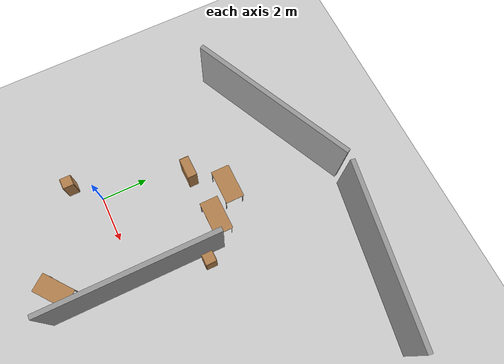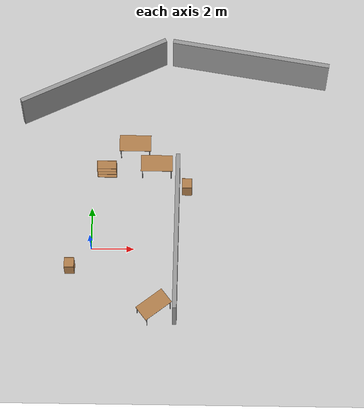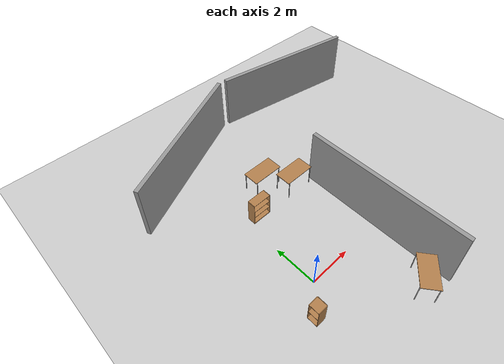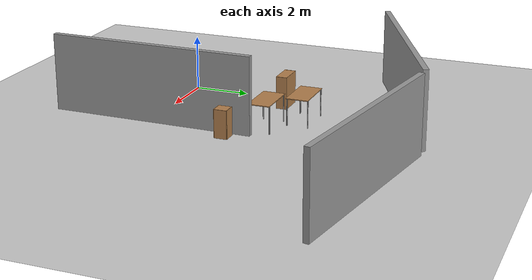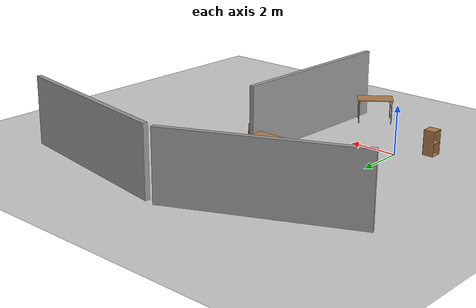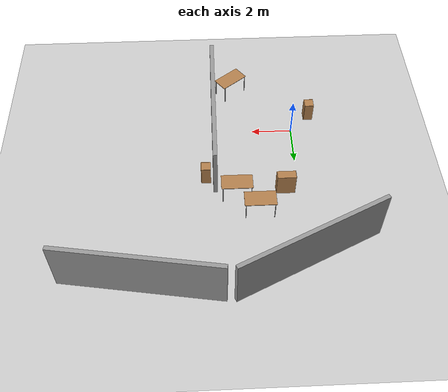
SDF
<sdf version="1.4">
 <world name="default">
  <model name="ground_plane">
   <static>1</static>
   <link name="link">
    <collision name="collision">
     <geometry><plane><normal>0 0 1</normal><size>100 100</size></plane></geometry>
     <surface><friction><ode><mu>100</mu><mu2>50</mu2></ode></friction></surface>
    </collision>
    <visual name="visual">
     <cast_shadows>0</cast_shadows>
     <geometry><plane><normal>0 0 1</normal><size>100 100</size></plane></geometry>
     <material>
      <script><uri>file://media/materials/scripts/gazebo.material</uri><name>Gazebo/Grey</name></script>
     </material>
    </visual>
    <velocity_decay><linear>0</linear><angular>0</angular></velocity_decay>
   </link>
  </model>
  <light name="sun" type="directional">
   <pose>0 0 10 0 -0 0</pose>
   <diffuse>0.8 0.8 0.8 1</diffuse>
   <specular>0.2 0.2 0.2 1</specular>
   <attenuation>
    <range>1000</range>
    <constant>0.9</constant>
    <linear>0.01</linear>
    <quadratic>0.001</quadratic>
   </attenuation>
   <direction>-0.5 0.1 -0.9</direction>
  </light>
  <physics type="ode">
   <max_step_size>0.001</max_step_size>
   <real_time_factor>1</real_time_factor>
   <real_time_update_rate>1000</real_time_update_rate>
   <gravity>0 0 -9.8</gravity>
  </physics>
  <scene><ambient>0.4 0.4 0.4 1</ambient><background>0.7 0.7 0.7 1</background><shadows>1</shadows></scene>
  <model name="grey_wall_0">
   <static>1</static>
   <link name="link">
    <pose>0 0 1.4 0 -0 0</pose>
    <collision name="collision"><geometry><box><size>7.5 0.2 2.8</size></box></geometry></collision>
    <visual name="visual">
     <cast_shadows>0</cast_shadows>
     <geometry><box><size>7.5 0.2 2.8</size></box></geometry>
     <material>
      <script>
       <uri>model://grey_wall/materials/scripts</uri>
       <uri>model://grey_wall/materials/textures</uri>
       <name>vrc/grey_wall</name>
      </script>
     </material>
    </visual>
    <velocity_decay><linear>0</linear><angular>0</angular></velocity_decay>
   </link>
   <pose>4.00423 0.07816 0 0 -0 1.56</pose>
  </model>
  <model name="table">
   <static>1</static>
   <link name="link">
    <collision name="surface">
     <pose>0 0 1 0 -0 0</pose>
     <geometry><box><size>1.5 0.8 0.03</size></box></geometry>
     <surface><friction><ode><mu>0.6</mu><mu2>0.6</mu2></ode></friction></surface>
    </collision>
    <visual name="visual1">
     <pose>0 0 1 0 -0 0</pose>
     <geometry><box><size>1.5 0.8 0.03</size></box></geometry>
     <material>
      <script><uri>file://media/materials/scripts/gazebo.material</uri><name>Gazebo/Wood</name></script>
     </material>
    </visual>
    <collision name="front_left_leg">
     <pose>0.68 0.38 0.5 0 -0 0</pose>
     <geometry><cylinder><radius>0.02</radius><length>1</length></cylinder></geometry>
    </collision>
    <visual name="front_left_leg">
     <pose>0.68 0.38 0.5 0 -0 0</pose>
     <geometry><cylinder><radius>0.02</radius><length>1</length></cylinder></geometry>
     <material>
      <script><uri>file://media/materials/scripts/gazebo.material</uri><name>Gazebo/Grey</name></script>
     </material>
    </visual>
    <collision name="front_right_leg">
     <pose>0.68 -0.38 0.5 0 -0 0</pose>
     <geometry><cylinder><radius>0.02</radius><length>1</length></cylinder></geometry>
    </collision>
    <visual name="front_right_leg">
     <pose>0.68 -0.38 0.5 0 -0 0</pose>
     <geometry><cylinder><radius>0.02</radius><length>1</length></cylinder></geometry>
     <material>
      <script><uri>file://media/materials/scripts/gazebo.material</uri><name>Gazebo/Grey</name></script>
     </material>
    </visual>
    <collision name="back_right_leg">
     <pose>-0.68 -0.38 0.5 0 -0 0</pose>
     <geometry><cylinder><radius>0.02</radius><length>1</length></cylinder></geometry>
    </collision>
    <visual name="back_right_leg">
     <pose>-0.68 -0.38 0.5 0 -0 0</pose>
     <geometry><cylinder><radius>0.02</radius><length>1</length></cylinder></geometry>
     <material>
      <script><uri>file://media/materials/scripts/gazebo.material</uri><name>Gazebo/Grey</name></script>
     </material>
    </visual>
    <collision name="back_left_leg">
     <pose>-0.68 0.38 0.5 0 -0 0</pose>
     <geometry><cylinder><radius>0.02</radius><length>1</length></cylinder></geometry>
    </collision>
    <visual name="back_left_leg">
     <pose>-0.68 0.38 0.5 0 -0 0</pose>
     <geometry><cylinder><radius>0.02</radius><length>1</length></cylinder></geometry>
     <material>
      <script><uri>file://media/materials/scripts/gazebo.material</uri><name>Gazebo/Grey</name></script>
     </material>
    </visual>
    <velocity_decay><linear>0</linear><angular>0</angular></velocity_decay>
   </link>
   <pose>3.03234 3.99644 0 0 -0 0</pose>
  </model>
  <model name="table_0">
   <static>1</static>
   <link name="link">
    <collision name="surface">
     <pose>0 0 1 0 -0 0</pose>
     <geometry><box><size>1.5 0.8 0.03</size></box></geometry>
     <surface><friction><ode><mu>0.6</mu><mu2>0.6</mu2></ode></friction></surface>
    </collision>
    <visual name="visual1">
     <pose>0 0 1 0 -0 0</pose>
     <geometry><box><size>1.5 0.8 0.03</size></box></geometry>
     <material>
      <script><uri>file://media/materials/scripts/gazebo.material</uri><name>Gazebo/Wood</name></script>
     </material>
    </visual>
    <collision name="front_left_leg">
     <pose>0.68 0.38 0.5 0 -0 0</pose>
     <geometry><cylinder><radius>0.02</radius><length>1</length></cylinder></geometry>
    </collision>
    <visual name="front_left_leg">
     <pose>0.68 0.38 0.5 0 -0 0</pose>
     <geometry><cylinder><radius>0.02</radius><length>1</length></cylinder></geometry>
     <material>
      <script><uri>file://media/materials/scripts/gazebo.material</uri><name>Gazebo/Grey</name></script>
     </material>
    </visual>
    <collision name="front_right_leg">
     <pose>0.68 -0.38 0.5 0 -0 0</pose>
     <geometry><cylinder><radius>0.02</radius><length>1</length></cylinder></geometry>
    </collision>
    <visual name="front_right_leg">
     <pose>0.68 -0.38 0.5 0 -0 0</pose>
     <geometry><cylinder><radius>0.02</radius><length>1</length></cylinder></geometry>
     <material>
      <script><uri>file://media/materials/scripts/gazebo.material</uri><name>Gazebo/Grey</name></script>
     </material>
    </visual>
    <collision name="back_right_leg">
     <pose>-0.68 -0.38 0.5 0 -0 0</pose>
     <geometry><cylinder><radius>0.02</radius><length>1</length></cylinder></geometry>
    </collision>
    <visual name="back_right_leg">
     <pose>-0.68 -0.38 0.5 0 -0 0</pose>
     <geometry><cylinder><radius>0.02</radius><length>1</length></cylinder></geometry>
     <material>
      <script><uri>file://media/materials/scripts/gazebo.material</uri><name>Gazebo/Grey</name></script>
     </material>
    </visual>
    <collision name="back_left_leg">
     <pose>-0.68 0.38 0.5 0 -0 0</pose>
     <geometry><cylinder><radius>0.02</radius><length>1</length></cylinder></geometry>
    </collision>
    <visual name="back_left_leg">
     <pose>-0.68 0.38 0.5 0 -0 0</pose>
     <geometry><cylinder><radius>0.02</radius><length>1</length></cylinder></geometry>
     <material>
      <script><uri>file://media/materials/scripts/gazebo.material</uri><name>Gazebo/Grey</name></script>
     </material>
    </visual>
    <velocity_decay><linear>0</linear><angular>0</angular></velocity_decay>
   </link>
   <pose>3 -3 0 0 0 -2.48319</pose>
  </model>
  <model name="bookshelf">
   <static>1</static>
   <link name="link">
    <inertial><mass>1</mass></inertial>
    <collision name="back">
     <pose>0 0.005 0.6 0 -0 0</pose>
     <geometry><box><size>0.9 0.01 1.2</size></box></geometry>
    </collision>
    <visual name="visual1">
     <pose>0 0.005 0.6 0 -0 0</pose>
     <geometry><box><size>0.9 0.01 1.2</size></box></geometry>
     <material>
      <script><uri>file://media/materials/scripts/gazebo.material</uri><name>Gazebo/Wood</name></script>
     </material>
    </visual>
    <collision name="left_side">
     <pose>0.45 -0.195 0.6 0 -0 0</pose>
     <geometry><box><size>0.02 0.4 1.2</size></box></geometry>
    </collision>
    <visual name="visual2">
     <pose>0.45 -0.195 0.6 0 -0 0</pose>
     <geometry><box><size>0.02 0.4 1.2</size></box></geometry>
     <material>
      <script><uri>file://media/materials/scripts/gazebo.material</uri><name>Gazebo/Wood</name></script>
     </material>
    </visual>
    <collision name="right_side">
     <pose>-0.45 -0.195 0.6 0 -0 0</pose>
     <geometry><box><size>0.02 0.4 1.2</size></box></geometry>
    </collision>
    <visual name="visual3">
     <pose>-0.45 -0.195 0.6 0 -0 0</pose>
     <geometry><box><size>0.02 0.4 1.2</size></box></geometry>
     <material>
      <script><uri>file://media/materials/scripts/gazebo.material</uri><name>Gazebo/Wood</name></script>
     </material>
    </visual>
    <collision name="bottom">
     <pose>0 -0.195 0.03 0 -0 0</pose>
     <geometry><box><size>0.88 0.4 0.06</size></box></geometry>
    </collision>
    <visual name="visual4">
     <pose>0 -0.195 0.03 0 -0 0</pose>
     <geometry><box><size>0.88 0.4 0.06</size></box></geometry>
     <material>
      <script><uri>file://media/materials/scripts/gazebo.material</uri><name>Gazebo/Wood</name></script>
     </material>
    </visual>
    <collision name="top">
     <pose>0 -0.195 1.19 0 -0 0</pose>
     <geometry><box><size>0.88 0.4 0.02</size></box></geometry>
    </collision>
    <visual name="visual5">
     <pose>0 -0.195 1.19 0 -0 0</pose>
     <geometry><box><size>0.88 0.4 0.02</size></box></geometry>
     <material>
      <script><uri>file://media/materials/scripts/gazebo.material</uri><name>Gazebo/Wood</name></script>
     </material>
    </visual>
    <collision name="low_shelf">
     <pose>0 -0.195 0.43 0 -0 0</pose>
     <geometry><box><size>0.88 0.4 0.02</size></box></geometry>
    </collision>
    <visual name="visual6">
     <pose>0 -0.195 0.43 0 -0 0</pose>
     <geometry><box><size>0.88 0.4 0.02</size></box></geometry>
     <material>
      <script><uri>file://media/materials/scripts/gazebo.material</uri><name>Gazebo/Wood</name></script>
     </material>
    </visual>
    <collision name="high_shelf">
     <pose>0 -0.195 0.8 0 -0 0</pose>
     <geometry><box><size>0.88 0.4 0.02</size></box></geometry>
    </collision>
    <visual name="visual7">
     <pose>0 -0.195 0.8 0 -0 0</pose>
     <geometry><box><size>0.88 0.4 0.02</size></box></geometry>
     <material>
      <script><uri>file://media/materials/scripts/gazebo.material</uri><name>Gazebo/Wood</name></script>
     </material>
    </visual>
    <velocity_decay><linear>0</linear><angular>0</angular></velocity_decay>
   </link>
   <pose>0.671485 4.01162 0 0 -0 0</pose>
  </model>
  <model name="cabinet">
   <static>1</static>
   <link name="cabinet_bottom_plate">
    <inertial>
     <pose>0 0 -1 0 -0 0</pose>
     <inertia><ixx>2.05</ixx><ixy>0</ixy><ixz>0</ixz><iyy>2.05</iyy><iyz>0</iyz><izz>2.05</izz></inertia>
     <mass>25</mass>
    </inertial>
    <collision name="cabinet_bottom_plate_geom">
     <pose>0 0 0.01 0 -0 0</pose>
     <geometry><box><size>0.45 0.45 0.02</size></box></geometry>
    </collision>
    <visual name="cabinet_bottom_plate_geom_visual">
     <pose>0 0 0.01 0 -0 0</pose>
     <geometry><box><size>0.45 0.45 0.02</size></box></geometry>
     <material>
      <script><uri>file://media/materials/scripts/gazebo.material</uri><name>Gazebo/Wood</name></script>
     </material>
    </visual>
    <collision name="cabinet_bottom_plate_geom_cabinet_back_plate">
     <pose>0.235 0 0.51 0 -0 0</pose>
     <geometry><box><size>0.02 0.45 1.02</size></box></geometry>
    </collision>
    <visual name="cabinet_bottom_plate_geom_cabinet_back_plate_visual">
     <pose>0.235 0 0.51 0 -0 0</pose>
     <geometry><box><size>0.02 0.45 1.02</size></box></geometry>
     <material>
      <script><uri>file://media/materials/scripts/gazebo.material</uri><name>Gazebo/Wood</name></script>
     </material>
    </visual>
    <collision name="cabinet_bottom_plate_geom_cabinet_left_plate">
     <pose>0 0.235 0.51 0 -0 0</pose>
     <geometry><box><size>0.45 0.02 1.02</size></box></geometry>
    </collision>
    <visual name="cabinet_bottom_plate_geom_cabinet_left_plate_visual">
     <pose>0 0.235 0.51 0 -0 0</pose>
     <geometry><box><size>0.45 0.02 1.02</size></box></geometry>
     <material>
      <script><uri>file://media/materials/scripts/gazebo.material</uri><name>Gazebo/Wood</name></script>
     </material>
    </visual>
    <collision name="cabinet_bottom_plate_geom_cabinet_middle_plate">
     <pose>0 0 0.51 0 -0 0</pose>
     <geometry><box><size>0.45 0.45 0.02</size></box></geometry>
    </collision>
    <visual name="cabinet_bottom_plate_geom_cabinet_middle_plate_visual">
     <pose>0 0 0.51 0 -0 0</pose>
     <geometry><box><size>0.45 0.45 0.02</size></box></geometry>
     <material>
      <script><uri>file://media/materials/scripts/gazebo.material</uri><name>Gazebo/Wood</name></script>
     </material>
    </visual>
    <collision name="cabinet_bottom_plate_geom_cabinet_right_plate">
     <pose>0 -0.235 0.51 0 -0 0</pose>
     <geometry><box><size>0.45 0.02 1.02</size></box></geometry>
    </collision>
    <visual name="cabinet_bottom_plate_geom_cabinet_right_plate_visual">
     <pose>0 -0.235 0.51 0 -0 0</pose>
     <geometry><box><size>0.45 0.02 1.02</size></box></geometry>
     <material>
      <script><uri>file://media/materials/scripts/gazebo.material</uri><name>Gazebo/Wood</name></script>
     </material>
    </visual>
    <collision name="cabinet_bottom_plate_geom_cabinet_top_plate">
     <pose>0 0 1.01 0 -0 0</pose>
     <geometry><box><size>0.45 0.45 0.02</size></box></geometry>
    </collision>
    <visual name="cabinet_bottom_plate_geom_cabinet_top_plate_visual">
     <pose>0 0 1.01 0 -0 0</pose>
     <geometry><box><size>0.45 0.45 0.02</size></box></geometry>
     <material>
      <script><uri>file://media/materials/scripts/gazebo.material</uri><name>Gazebo/Wood</name></script>
     </material>
    </visual>
    <velocity_decay><linear>0</linear><angular>0</angular></velocity_decay>
   </link>
   <pose>-1 -1 0 0 -0 0</pose>
  </model>
  <model name="grey_wall">
   <static>1</static>
   <link name="link">
    <pose>0 0 1.4 0 -0 0</pose>
    <collision name="collision"><geometry><box><size>7.5 0.2 2.8</size></box></geometry></collision>
    <visual name="visual">
     <cast_shadows>0</cast_shadows>
     <geometry><box><size>7.5 0.2 2.8</size></box></geometry>
     <material>
      <script>
       <uri>model://grey_wall/materials/scripts</uri>
       <uri>model://grey_wall/materials/textures</uri>
       <name>vrc/grey_wall</name>
      </script>
     </material>
    </visual>
    <velocity_decay><linear>0</linear><angular>0</angular></velocity_decay>
   </link>
   <pose>0 8 0 0 -0 0.44</pose>
  </model>
  <model name="table_1">
   <static>1</static>
   <link name="link">
    <collision name="surface">
     <pose>0 0 1 0 -0 0</pose>
     <geometry><box><size>1.5 0.8 0.03</size></box></geometry>
     <surface><friction><ode><mu>0.6</mu><mu2>0.6</mu2></ode></friction></surface>
    </collision>
    <visual name="visual1">
     <pose>0 0 1 0 -0 0</pose>
     <geometry><box><size>1.5 0.8 0.03</size></box></geometry>
     <material>
      <script><uri>file://media/materials/scripts/gazebo.material</uri><name>Gazebo/Wood</name></script>
     </material>
    </visual>
    <collision name="front_left_leg">
     <pose>0.68 0.38 0.5 0 -0 0</pose>
     <geometry><cylinder><radius>0.02</radius><length>1</length></cylinder></geometry>
    </collision>
    <visual name="front_left_leg">
     <pose>0.68 0.38 0.5 0 -0 0</pose>
     <geometry><cylinder><radius>0.02</radius><length>1</length></cylinder></geometry>
     <material>
      <script><uri>file://media/materials/scripts/gazebo.material</uri><name>Gazebo/Grey</name></script>
     </material>
    </visual>
    <collision name="front_right_leg">
     <pose>0.68 -0.38 0.5 0 -0 0</pose>
     <geometry><cylinder><radius>0.02</radius><length>1</length></cylinder></geometry>
    </collision>
    <visual name="front_right_leg">
     <pose>0.68 -0.38 0.5 0 -0 0</pose>
     <geometry><cylinder><radius>0.02</radius><length>1</length></cylinder></geometry>
     <material>
      <script><uri>file://media/materials/scripts/gazebo.material</uri><name>Gazebo/Grey</name></script>
     </material>
    </visual>
    <collision name="back_right_leg">
     <pose>-0.68 -0.38 0.5 0 -0 0</pose>
     <geometry><cylinder><radius>0.02</radius><length>1</length></cylinder></geometry>
    </collision>
    <visual name="back_right_leg">
     <pose>-0.68 -0.38 0.5 0 -0 0</pose>
     <geometry><cylinder><radius>0.02</radius><length>1</length></cylinder></geometry>
     <material>
      <script><uri>file://media/materials/scripts/gazebo.material</uri><name>Gazebo/Grey</name></script>
     </material>
    </visual>
    <collision name="back_left_leg">
     <pose>-0.68 0.38 0.5 0 -0 0</pose>
     <geometry><cylinder><radius>0.02</radius><length>1</length></cylinder></geometry>
    </collision>
    <visual name="back_left_leg">
     <pose>-0.68 0.38 0.5 0 -0 0</pose>
     <geometry><cylinder><radius>0.02</radius><length>1</length></cylinder></geometry>
     <material>
      <script><uri>file://media/materials/scripts/gazebo.material</uri><name>Gazebo/Grey</name></script>
     </material>
    </visual>
    <velocity_decay><linear>0</linear><angular>0</angular></velocity_decay>
   </link>
   <pose>2 5 0 0 -0 0</pose>
  </model>
  <model name="grey_wall_1">
   <static>1</static>
   <link name="link">
    <pose>0 0 1.4 0 -0 0</pose>
    <collision name="collision"><geometry><box><size>7.5 0.2 2.8</size></box></geometry></collision>
    <visual name="visual">
     <cast_shadows>0</cast_shadows>
     <geometry><box><size>7.5 0.2 2.8</size></box></geometry>
     <material>
      <script>
       <uri>model://grey_wall/materials/scripts</uri>
       <uri>model://grey_wall/materials/textures</uri>
       <name>vrc/grey_wall</name>
      </script>
     </material>
    </visual>
    <velocity_decay><linear>0</linear><angular>0</angular></velocity_decay>
   </link>
   <pose>7.44531 8.95238 0 0 0 -0.16</pose>
  </model>
  <model name="cabinet_0">
   <static>1</static>
   <link name="cabinet_bottom_plate">
    <inertial>
     <pose>0 0 -1 0 -0 0</pose>
     <inertia><ixx>2.05</ixx><ixy>0</ixy><ixz>0</ixz><iyy>2.05</iyy><iyz>0</iyz><izz>2.05</izz></inertia>
     <mass>25</mass>
    </inertial>
    <collision name="cabinet_bottom_plate_geom">
     <pose>0 0 0.01 0 -0 0</pose>
     <geometry><box><size>0.45 0.45 0.02</size></box></geometry>
    </collision>
    <visual name="cabinet_bottom_plate_geom_visual">
     <pose>0 0 0.01 0 -0 0</pose>
     <geometry><box><size>0.45 0.45 0.02</size></box></geometry>
     <material>
      <script><uri>file://media/materials/scripts/gazebo.material</uri><name>Gazebo/Wood</name></script>
     </material>
    </visual>
    <collision name="cabinet_bottom_plate_geom_cabinet_back_plate">
     <pose>0.235 0 0.51 0 -0 0</pose>
     <geometry><box><size>0.02 0.45 1.02</size></box></geometry>
    </collision>
    <visual name="cabinet_bottom_plate_geom_cabinet_back_plate_visual">
     <pose>0.235 0 0.51 0 -0 0</pose>
     <geometry><box><size>0.02 0.45 1.02</size></box></geometry>
     <material>
      <script><uri>file://media/materials/scripts/gazebo.material</uri><name>Gazebo/Wood</name></script>
     </material>
    </visual>
    <collision name="cabinet_bottom_plate_geom_cabinet_left_plate">
     <pose>0 0.235 0.51 0 -0 0</pose>
     <geometry><box><size>0.45 0.02 1.02</size></box></geometry>
    </collision>
    <visual name="cabinet_bottom_plate_geom_cabinet_left_plate_visual">
     <pose>0 0.235 0.51 0 -0 0</pose>
     <geometry><box><size>0.45 0.02 1.02</size></box></geometry>
     <material>
      <script><uri>file://media/materials/scripts/gazebo.material</uri><name>Gazebo/Wood</name></script>
     </material>
    </visual>
    <collision name="cabinet_bottom_plate_geom_cabinet_middle_plate">
     <pose>0 0 0.51 0 -0 0</pose>
     <geometry><box><size>0.45 0.45 0.02</size></box></geometry>
    </collision>
    <visual name="cabinet_bottom_plate_geom_cabinet_middle_plate_visual">
     <pose>0 0 0.51 0 -0 0</pose>
     <geometry><box><size>0.45 0.45 0.02</size></box></geometry>
     <material>
      <script><uri>file://media/materials/scripts/gazebo.material</uri><name>Gazebo/Wood</name></script>
     </material>
    </visual>
    <collision name="cabinet_bottom_plate_geom_cabinet_right_plate">
     <pose>0 -0.235 0.51 0 -0 0</pose>
     <geometry><box><size>0.45 0.02 1.02</size></box></geometry>
    </collision>
    <visual name="cabinet_bottom_plate_geom_cabinet_right_plate_visual">
     <pose>0 -0.235 0.51 0 -0 0</pose>
     <geometry><box><size>0.45 0.02 1.02</size></box></geometry>
     <material>
      <script><uri>file://media/materials/scripts/gazebo.material</uri><name>Gazebo/Wood</name></script>
     </material>
    </visual>
    <collision name="cabinet_bottom_plate_geom_cabinet_top_plate">
     <pose>0 0 1.01 0 -0 0</pose>
     <geometry><box><size>0.45 0.45 0.02</size></box></geometry>
    </collision>
    <visual name="cabinet_bottom_plate_geom_cabinet_top_plate_visual">
     <pose>0 0 1.01 0 -0 0</pose>
     <geometry><box><size>0.45 0.45 0.02</size></box></geometry>
     <material>
      <script><uri>file://media/materials/scripts/gazebo.material</uri><name>Gazebo/Wood</name></script>
     </material>
    </visual>
    <velocity_decay><linear>0</linear><angular>0</angular></velocity_decay>
   </link>
   <pose>4.47696 3 0 0 -0 0</pose>
  </model>
 </world>
</sdf>
